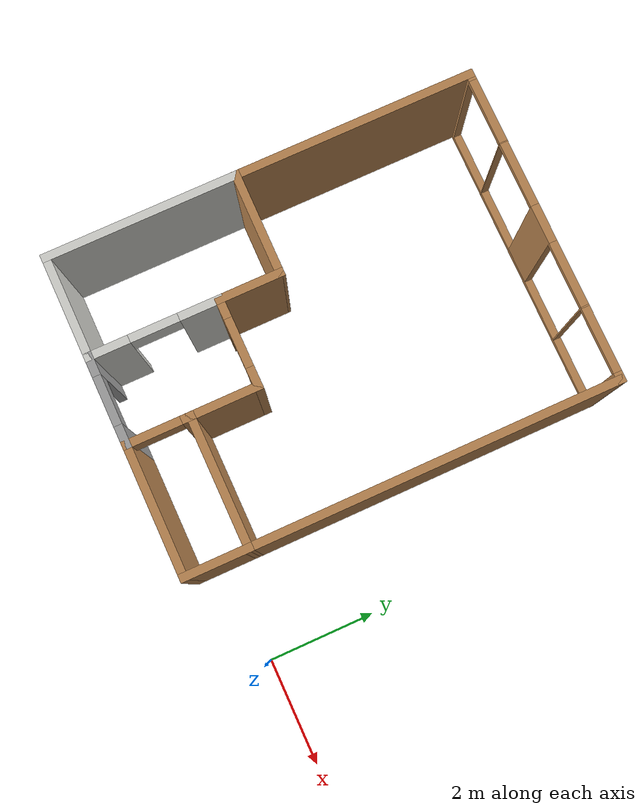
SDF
<?xml version='1.0'?>
<sdf version='1.7'>
  <model name='flat'>
    <pose>-3.86122 3.33446 0 0 -0 0</pose>
    <link name='Wall_11'>
      <pose>-1.1355 -3.90754 0 0 -0 0</pose>
      <visual name='Wall_11_Visual_0'>
        <pose>-0.661991 0 1.25 0 -0 0</pose>
        <geometry>
          <box>
            <size>0.426018 0.15 2.5</size>
          </box>
        </geometry>
        <material>
          <script>
            <uri>file://media/materials/scripts/gazebo.material</uri>
            <name>Gazebo/Grey</name>
          </script>
          <ambient>1 1 1 1</ambient>
        </material>
        <meta>
          <layer>0</layer>
        </meta>
      </visual>
      <collision name='Wall_11_Collision_0'>
        <geometry>
          <box>
            <size>0.426018 0.15 2.5</size>
          </box>
        </geometry>
        <pose>-0.661991 0 1.25 0 -0 0</pose>
      </collision>
      <visual name='Wall_11_Visual_1'>
        <pose>0.663009 0 1.25 0 -0 0</pose>
        <geometry>
          <box>
            <size>0.423982 0.15 2.5</size>
          </box>
        </geometry>
        <material>
          <script>
            <uri>file://media/materials/scripts/gazebo.material</uri>
            <name>Gazebo/Grey</name>
          </script>
          <ambient>1 1 1 1</ambient>
        </material>
        <meta>
          <layer>0</layer>
        </meta>
      </visual>
      <collision name='Wall_11_Collision_1'>
        <geometry>
          <box>
            <size>0.423982 0.15 2.5</size>
          </box>
        </geometry>
        <pose>0.663009 0 1.25 0 -0 0</pose>
      </collision>
      <visual name='Wall_11_Visual_2'>
        <pose>0.001018 0 2.25 0 -0 0</pose>
        <geometry>
          <box>
            <size>0.9 0.15 0.5</size>
          </box>
        </geometry>
        <material>
          <script>
            <uri>file://media/materials/scripts/gazebo.material</uri>
            <name>Gazebo/Grey</name>
          </script>
          <ambient>1 1 1 1</ambient>
        </material>
        <meta>
          <layer>0</layer>
        </meta>
      </visual>
      <collision name='Wall_11_Collision_2'>
        <geometry>
          <box>
            <size>0.9 0.15 0.5</size>
          </box>
        </geometry>
        <pose>0.001018 0 2.25 0 -0 0</pose>
      </collision>
    </link>
    <link name='Wall_12'>
      <pose>-0.335497 -2.73254 0 0 -0 1.5708</pose>
      <visual name='Wall_12_Visual_0'>
        <pose>-1.17571 0 1.25 0 -0 0</pose>
        <geometry>
          <box>
            <size>0.14859 0.15 2.5</size>
          </box>
        </geometry>
        <material>
          <script>
            <uri>file://media/materials/scripts/gazebo.material</uri>
            <name>Gazebo/Wood</name>
          </script>
          <ambient>1 1 1 1</ambient>
        </material>
        <meta>
          <layer>0</layer>
        </meta>
      </visual>
      <collision name='Wall_12_Collision_0'>
        <geometry>
          <box>
            <size>0.14859 0.15 2.5</size>
          </box>
        </geometry>
        <pose>-1.17571 0 1.25 0 -0 0</pose>
      </collision>
      <visual name='Wall_12_Visual_1'>
        <pose>0.524295 0 1.25 0 -0 0</pose>
        <geometry>
          <box>
            <size>1.45141 0.15 2.5</size>
          </box>
        </geometry>
        <material>
          <script>
            <uri>file://media/materials/scripts/gazebo.material</uri>
            <name>Gazebo/Wood</name>
          </script>
          <ambient>1 1 1 1</ambient>
        </material>
        <meta>
          <layer>0</layer>
        </meta>
      </visual>
      <collision name='Wall_12_Collision_1'>
        <geometry>
          <box>
            <size>1.45141 0.15 2.5</size>
          </box>
        </geometry>
        <pose>0.524295 0 1.25 0 -0 0</pose>
      </collision>
      <visual name='Wall_12_Visual_2'>
        <pose>-0.65141 0 2.25 0 -0 0</pose>
        <geometry>
          <box>
            <size>0.9 0.15 0.5</size>
          </box>
        </geometry>
        <material>
          <script>
            <uri>file://media/materials/scripts/gazebo.material</uri>
            <name>Gazebo/Wood</name>
          </script>
          <ambient>1 1 1 1</ambient>
        </material>
        <meta>
          <layer>0</layer>
        </meta>
      </visual>
      <collision name='Wall_12_Collision_2'>
        <geometry>
          <box>
            <size>0.9 0.15 0.5</size>
          </box>
        </geometry>
        <pose>-0.65141 0 2.25 0 -0 0</pose>
      </collision>
    </link>
    <link name='Wall_13'>
      <pose>-1.1355 -1.55754 0 0 -0 3.14159</pose>
      <visual name='Wall_13_Visual_0'>
        <pose>-0.663009 0 1.25 0 -0 0</pose>
        <geometry>
          <box>
            <size>0.423982 0.15 2.5</size>
          </box>
        </geometry>
        <material>
          <script>
            <uri>file://media/materials/scripts/gazebo.material</uri>
            <name>Gazebo/Wood</name>
          </script>
          <ambient>0.921569 0.807843 0.615686 1</ambient>
        </material>
        <meta>
          <layer>0</layer>
        </meta>
      </visual>
      <collision name='Wall_13_Collision_0'>
        <geometry>
          <box>
            <size>0.423982 0.15 2.5</size>
          </box>
        </geometry>
        <pose>-0.663009 0 1.25 0 -0 0</pose>
      </collision>
      <visual name='Wall_13_Visual_1'>
        <pose>0.661991 0 1.25 0 -0 0</pose>
        <geometry>
          <box>
            <size>0.426018 0.15 2.5</size>
          </box>
        </geometry>
        <material>
          <script>
            <uri>file://media/materials/scripts/gazebo.material</uri>
            <name>Gazebo/Wood</name>
          </script>
          <ambient>0.921569 0.807843 0.615686 1</ambient>
        </material>
        <meta>
          <layer>0</layer>
        </meta>
      </visual>
      <collision name='Wall_13_Collision_1'>
        <geometry>
          <box>
            <size>0.426018 0.15 2.5</size>
          </box>
        </geometry>
        <pose>0.661991 0 1.25 0 -0 0</pose>
      </collision>
      <visual name='Wall_13_Visual_2'>
        <pose>-0.001018 0 2.25 0 -0 0</pose>
        <geometry>
          <box>
            <size>0.9 0.15 0.5</size>
          </box>
        </geometry>
        <material>
          <script>
            <uri>file://media/materials/scripts/gazebo.material</uri>
            <name>Gazebo/Wood</name>
          </script>
          <ambient>0.921569 0.807843 0.615686 1</ambient>
        </material>
        <meta>
          <layer>0</layer>
        </meta>
      </visual>
      <collision name='Wall_13_Collision_2'>
        <geometry>
          <box>
            <size>0.9 0.15 0.5</size>
          </box>
        </geometry>
        <pose>-0.001018 0 2.25 0 -0 0</pose>
      </collision>
    </link>
    <link name='Wall_15'>
      <collision name='Wall_15_Collision'>
        <geometry>
          <box>
            <size>1.25 0.15 2.5</size>
          </box>
        </geometry>
        <pose>0 0 1.25 0 -0 0</pose>
      </collision>
      <visual name='Wall_15_Visual'>
        <pose>0 0 1.25 0 -0 0</pose>
        <geometry>
          <box>
            <size>1.25 0.15 2.5</size>
          </box>
        </geometry>
        <material>
          <script>
            <uri>file://media/materials/scripts/gazebo.material</uri>
            <name>Gazebo/Wood</name>
          </script>
          <ambient>1 1 1 1</ambient>
        </material>
        <meta>
          <layer>0</layer>
        </meta>
      </visual>
      <pose>-1.9355 -1.00754 0 0 -0 1.5708</pose>
    </link>
    <link name='Wall_16'>
      <collision name='Wall_16_Collision'>
        <geometry>
          <box>
            <size>2 0.15 2.5</size>
          </box>
        </geometry>
        <pose>0 0 1.25 0 -0 0</pose>
      </collision>
      <visual name='Wall_16_Visual'>
        <pose>0 0 1.25 0 -0 0</pose>
        <geometry>
          <box>
            <size>2 0.15 2.5</size>
          </box>
        </geometry>
        <material>
          <script>
            <uri>file://media/materials/scripts/gazebo.material</uri>
            <name>Gazebo/Wood</name>
          </script>
          <ambient>0.921569 0.807843 0.615686 1</ambient>
        </material>
        <meta>
          <layer>0</layer>
        </meta>
      </visual>
      <pose>-2.86064 -0.449984 0 0 -0 3.13342</pose>
    </link>
    <link name='Wall_17'>
      <collision name='Wall_17_Collision'>
        <geometry>
          <box>
            <size>3.61504 0.15 2.5</size>
          </box>
        </geometry>
        <pose>0 0 1.25 0 -0 0</pose>
      </collision>
      <visual name='Wall_17_Visual'>
        <pose>0 0 1.25 0 -0 0</pose>
        <geometry>
          <box>
            <size>3.61504 0.15 2.5</size>
          </box>
        </geometry>
        <material>
          <script>
            <uri>file://media/materials/scripts/gazebo.material</uri>
            <name>Gazebo/CeilingTiled</name>
          </script>
          <ambient>0.447059 0.623529 0.811765 1</ambient>
        </material>
        <meta>
          <layer>0</layer>
        </meta>
      </visual>
      <pose>-3.78578 -2.17494 0 0 -0 -1.5708</pose>
    </link>
    <link name='Wall_19'>
      <collision name='Wall_19_Collision'>
        <geometry>
          <box>
            <size>2.00028 0.15 2.5</size>
          </box>
        </geometry>
        <pose>0 0 1.25 0 -0 0</pose>
      </collision>
      <visual name='Wall_19_Visual'>
        <pose>0 0 1.25 0 -0 0</pose>
        <geometry>
          <box>
            <size>2.00028 0.15 2.5</size>
          </box>
        </geometry>
        <material>
          <script>
            <uri>file://media/materials/scripts/gazebo.material</uri>
            <name>Gazebo/CeilingTiled</name>
          </script>
          <ambient>0.447059 0.623529 0.811765 1</ambient>
        </material>
        <meta>
          <layer>0</layer>
        </meta>
      </visual>
      <pose>-2.86064 -3.9075 0 0 -0 -4.3e-05</pose>
    </link>
    <link name='Wall_28'>
      <collision name='Wall_28_Collision'>
        <geometry>
          <box>
            <size>2.5 0.15 2.5</size>
          </box>
        </geometry>
        <pose>0 0 1.25 0 -0 0</pose>
      </collision>
      <visual name='Wall_28_Visual'>
        <pose>0 0 1.25 0 -0 0</pose>
        <geometry>
          <box>
            <size>2.5 0.15 2.5</size>
          </box>
        </geometry>
        <material>
          <script>
            <uri>file://media/materials/scripts/gazebo.material</uri>
            <name>Gazebo/Wood</name>
          </script>
          <ambient>0.921569 0.807843 0.615686 1</ambient>
        </material>
        <meta>
          <layer>0</layer>
        </meta>
      </visual>
      <pose>0.839361 -3.9075 0 0 -0 3.4e-05</pose>
    </link>
    <link name='Wall_3'>
      <pose>-1.9355 -2.73254 0 0 -0 1.5708</pose>
      <visual name='Wall_3_Visual_0'>
        <pose>-0.849298 0 1.25 0 -0 0</pose>
        <geometry>
          <box>
            <size>0.801404 0.15 2.5</size>
          </box>
        </geometry>
        <material>
          <script>
            <uri>file://media/materials/scripts/gazebo.material</uri>
            <name>Gazebo/CeilingTiled</name>
          </script>
          <ambient>0.447059 0.623529 0.811765 1</ambient>
        </material>
        <meta>
          <layer>0</layer>
        </meta>
      </visual>
      <collision name='Wall_3_Collision_0'>
        <geometry>
          <box>
            <size>0.801404 0.15 2.5</size>
          </box>
        </geometry>
        <pose>-0.849298 0 1.25 0 -0 0</pose>
      </collision>
      <visual name='Wall_3_Visual_1'>
        <pose>0.846379 0 1.25 0 -0 0</pose>
        <geometry>
          <box>
            <size>0.807242 0.15 2.5</size>
          </box>
        </geometry>
        <material>
          <script>
            <uri>file://media/materials/scripts/gazebo.material</uri>
            <name>Gazebo/CeilingTiled</name>
          </script>
          <ambient>0.447059 0.623529 0.811765 1</ambient>
        </material>
        <meta>
          <layer>0</layer>
        </meta>
      </visual>
      <collision name='Wall_3_Collision_1'>
        <geometry>
          <box>
            <size>0.807242 0.15 2.5</size>
          </box>
        </geometry>
        <pose>0.846379 0 1.25 0 -0 0</pose>
      </collision>
      <visual name='Wall_3_Visual_2'>
        <pose>-0.002919 0 2.25 0 -0 0</pose>
        <geometry>
          <box>
            <size>0.891353 0.15 0.5</size>
          </box>
        </geometry>
        <material>
          <script>
            <uri>file://media/materials/scripts/gazebo.material</uri>
            <name>Gazebo/CeilingTiled</name>
          </script>
          <ambient>0.447059 0.623529 0.811765 1</ambient>
        </material>
        <meta>
          <layer>0</layer>
        </meta>
      </visual>
      <collision name='Wall_3_Collision_2'>
        <geometry>
          <box>
            <size>0.891353 0.15 0.5</size>
          </box>
        </geometry>
        <pose>-0.002919 0 2.25 0 -0 0</pose>
      </collision>
    </link>
    <link name='Wall_37'>
      <collision name='Wall_37_Collision'>
        <geometry>
          <box>
            <size>2.5 0.15 2.5</size>
          </box>
        </geometry>
        <pose>0 0 1.25 0 -0 0</pose>
      </collision>
      <visual name='Wall_37_Visual'>
        <pose>0 0 1.25 0 -0 0</pose>
        <geometry>
          <box>
            <size>2.5 0.15 2.5</size>
          </box>
        </geometry>
        <material>
          <script>
            <uri>file://media/materials/scripts/gazebo.material</uri>
            <name>Gazebo/Wood</name>
          </script>
          <ambient>0.921569 0.807843 0.615686 1</ambient>
        </material>
        <meta>
          <layer>0</layer>
        </meta>
      </visual>
      <pose>0.840632 -2.76766 0 0 -0 0</pose>
    </link>
    <link name='Wall_39'>
      <collision name='Wall_39_Collision'>
        <geometry>
          <box>
            <size>4.5 0.15 2.5</size>
          </box>
        </geometry>
        <pose>0 0 1.25 0 -0 0</pose>
      </collision>
      <visual name='Wall_39_Visual'>
        <pose>0 0 1.25 0 -0 0</pose>
        <geometry>
          <box>
            <size>4.5 0.15 2.5</size>
          </box>
        </geometry>
        <material>
          <script>
            <uri>file://media/materials/scripts/gazebo.material</uri>
            <name>Gazebo/Wood</name>
          </script>
          <ambient>0.921569 0.807843 0.615686 1</ambient>
        </material>
        <meta>
          <layer>0</layer>
        </meta>
      </visual>
      <pose>-3.78578 1.73256 0 0 -0 1.5708</pose>
    </link>
    <link name='Wall_40'>
      <pose>-0.885282 3.90754 0 0 -0 0</pose>
      <visual name='Wall_40_Visual_0'>
        <pose>-2.87635 0 1.25 0 -0 0</pose>
        <geometry>
          <box>
            <size>0.198292 0.15 2.5</size>
          </box>
        </geometry>
        <material>
          <script>
            <uri>file://media/materials/scripts/gazebo.material</uri>
            <name>Gazebo/Wood</name>
          </script>
          <ambient>0.921569 0.807843 0.615686 1</ambient>
        </material>
        <meta>
          <layer>0</layer>
        </meta>
      </visual>
      <collision name='Wall_40_Collision_0'>
        <geometry>
          <box>
            <size>0.198292 0.15 2.5</size>
          </box>
        </geometry>
        <pose>-2.87635 0 1.25 0 -0 0</pose>
      </collision>
      <visual name='Wall_40_Visual_1'>
        <pose>-2.16819 0 0.05 0 -0 0</pose>
        <geometry>
          <box>
            <size>1.21804 0.15 0.1</size>
          </box>
        </geometry>
        <material>
          <script>
            <uri>file://media/materials/scripts/gazebo.material</uri>
            <name>Gazebo/Wood</name>
          </script>
          <ambient>0.921569 0.807843 0.615686 1</ambient>
        </material>
        <meta>
          <layer>0</layer>
        </meta>
      </visual>
      <collision name='Wall_40_Collision_1'>
        <geometry>
          <box>
            <size>1.21804 0.15 0.1</size>
          </box>
        </geometry>
        <pose>-2.16819 0 0.05 0 -0 0</pose>
      </collision>
      <visual name='Wall_40_Visual_2'>
        <pose>0.708164 0 0.05 0 -0 0</pose>
        <geometry>
          <box>
            <size>4.53467 0.15 0.1</size>
          </box>
        </geometry>
        <material>
          <script>
            <uri>file://media/materials/scripts/gazebo.material</uri>
            <name>Gazebo/Wood</name>
          </script>
          <ambient>0.921569 0.807843 0.615686 1</ambient>
        </material>
        <meta>
          <layer>0</layer>
        </meta>
      </visual>
      <collision name='Wall_40_Collision_2'>
        <geometry>
          <box>
            <size>4.53467 0.15 0.1</size>
          </box>
        </geometry>
        <pose>0.708164 0 0.05 0 -0 0</pose>
      </collision>
      <visual name='Wall_40_Visual_3'>
        <pose>-0.008052 0 1.3 0 -0 0</pose>
        <geometry>
          <box>
            <size>0.702241 0.15 2.4</size>
          </box>
        </geometry>
        <material>
          <script>
            <uri>file://media/materials/scripts/gazebo.material</uri>
            <name>Gazebo/Wood</name>
          </script>
          <ambient>0.921569 0.807843 0.615686 1</ambient>
        </material>
        <meta>
          <layer>0</layer>
        </meta>
      </visual>
      <collision name='Wall_40_Collision_3'>
        <geometry>
          <box>
            <size>0.702241 0.15 2.4</size>
          </box>
        </geometry>
        <pose>-0.008052 0 1.3 0 -0 0</pose>
      </collision>
      <visual name='Wall_40_Visual_4'>
        <pose>1.55585 0 1.3 0 -0 0</pose>
        <geometry>
          <box>
            <size>0.025555 0.15 2.4</size>
          </box>
        </geometry>
        <material>
          <script>
            <uri>file://media/materials/scripts/gazebo.material</uri>
            <name>Gazebo/Wood</name>
          </script>
          <ambient>0.921569 0.807843 0.615686 1</ambient>
        </material>
        <meta>
          <layer>0</layer>
        </meta>
      </visual>
      <collision name='Wall_40_Collision_4'>
        <geometry>
          <box>
            <size>0.025555 0.15 2.4</size>
          </box>
        </geometry>
        <pose>1.55585 0 1.3 0 -0 0</pose>
      </collision>
      <visual name='Wall_40_Visual_5'>
        <pose>2.87206 0 1.3 0 -0 0</pose>
        <geometry>
          <box>
            <size>0.206876 0.15 2.4</size>
          </box>
        </geometry>
        <material>
          <script>
            <uri>file://media/materials/scripts/gazebo.material</uri>
            <name>Gazebo/Wood</name>
          </script>
          <ambient>0.921569 0.807843 0.615686 1</ambient>
        </material>
        <meta>
          <layer>0</layer>
        </meta>
      </visual>
      <collision name='Wall_40_Collision_5'>
        <geometry>
          <box>
            <size>0.206876 0.15 2.4</size>
          </box>
        </geometry>
        <pose>2.87206 0 1.3 0 -0 0</pose>
      </collision>
      <visual name='Wall_40_Visual_6'>
        <pose>-1.56819 0 1.3 0 -0 0</pose>
        <geometry>
          <box>
            <size>0.018036 0.15 2.4</size>
          </box>
        </geometry>
        <material>
          <script>
            <uri>file://media/materials/scripts/gazebo.material</uri>
            <name>Gazebo/Wood</name>
          </script>
          <ambient>0.921569 0.807843 0.615686 1</ambient>
        </material>
        <meta>
          <layer>0</layer>
        </meta>
      </visual>
      <collision name='Wall_40_Collision_6'>
        <geometry>
          <box>
            <size>0.018036 0.15 2.4</size>
          </box>
        </geometry>
        <pose>-1.56819 0 1.3 0 -0 0</pose>
      </collision>
      <visual name='Wall_40_Visual_7'>
        <pose>-1.56819 0 1.3 0 -0 0</pose>
        <geometry>
          <box>
            <size>0.018036 0.15 2.4</size>
          </box>
        </geometry>
        <material>
          <script>
            <uri>file://media/materials/scripts/gazebo.material</uri>
            <name>Gazebo/Wood</name>
          </script>
          <ambient>0.921569 0.807843 0.615686 1</ambient>
        </material>
        <meta>
          <layer>0</layer>
        </meta>
      </visual>
      <collision name='Wall_40_Collision_7'>
        <geometry>
          <box>
            <size>0.018036 0.15 2.4</size>
          </box>
        </geometry>
        <pose>-1.56819 0 1.3 0 -0 0</pose>
      </collision>
      <visual name='Wall_40_Visual_8'>
        <pose>0.943069 0 2.45 0 -0 0</pose>
        <geometry>
          <box>
            <size>1.2 0.15 0.1</size>
          </box>
        </geometry>
        <material>
          <script>
            <uri>file://media/materials/scripts/gazebo.material</uri>
            <name>Gazebo/Wood</name>
          </script>
          <ambient>0.921569 0.807843 0.615686 1</ambient>
        </material>
        <meta>
          <layer>0</layer>
        </meta>
      </visual>
      <collision name='Wall_40_Collision_8'>
        <geometry>
          <box>
            <size>1.2 0.15 0.1</size>
          </box>
        </geometry>
        <pose>0.943069 0 2.45 0 -0 0</pose>
      </collision>
      <visual name='Wall_40_Visual_9'>
        <pose>2.16862 0 2.45 0 -0 0</pose>
        <geometry>
          <box>
            <size>1.2 0.15 0.1</size>
          </box>
        </geometry>
        <material>
          <script>
            <uri>file://media/materials/scripts/gazebo.material</uri>
            <name>Gazebo/Wood</name>
          </script>
          <ambient>0.921569 0.807843 0.615686 1</ambient>
        </material>
        <meta>
          <layer>0</layer>
        </meta>
      </visual>
      <collision name='Wall_40_Collision_9'>
        <geometry>
          <box>
            <size>1.2 0.15 0.1</size>
          </box>
        </geometry>
        <pose>2.16862 0 2.45 0 -0 0</pose>
      </collision>
      <visual name='Wall_40_Visual_10'>
        <pose>-0.959172 0 2.45 0 -0 0</pose>
        <geometry>
          <box>
            <size>1.2 0.15 0.1</size>
          </box>
        </geometry>
        <material>
          <script>
            <uri>file://media/materials/scripts/gazebo.material</uri>
            <name>Gazebo/Wood</name>
          </script>
          <ambient>0.921569 0.807843 0.615686 1</ambient>
        </material>
        <meta>
          <layer>0</layer>
        </meta>
      </visual>
      <collision name='Wall_40_Collision_10'>
        <geometry>
          <box>
            <size>1.2 0.15 0.1</size>
          </box>
        </geometry>
        <pose>-0.959172 0 2.45 0 -0 0</pose>
      </collision>
      <visual name='Wall_40_Visual_11'>
        <pose>-0.959172 0 2.45 0 -0 0</pose>
        <geometry>
          <box>
            <size>1.2 0.15 0.1</size>
          </box>
        </geometry>
        <material>
          <script>
            <uri>file://media/materials/scripts/gazebo.material</uri>
            <name>Gazebo/Wood</name>
          </script>
          <ambient>0.921569 0.807843 0.615686 1</ambient>
        </material>
        <meta>
          <layer>0</layer>
        </meta>
      </visual>
      <collision name='Wall_40_Collision_11'>
        <geometry>
          <box>
            <size>1.2 0.15 0.1</size>
          </box>
        </geometry>
        <pose>-0.959172 0 2.45 0 -0 0</pose>
      </collision>
      <visual name='Wall_40_Visual_12'>
        <pose>-2.17721 0 2.45 0 -0 0</pose>
        <geometry>
          <box>
            <size>1.2 0.15 0.1</size>
          </box>
        </geometry>
        <material>
          <script>
            <uri>file://media/materials/scripts/gazebo.material</uri>
            <name>Gazebo/Wood</name>
          </script>
          <ambient>0.921569 0.807843 0.615686 1</ambient>
        </material>
        <meta>
          <layer>0</layer>
        </meta>
      </visual>
      <collision name='Wall_40_Collision_12'>
        <geometry>
          <box>
            <size>1.2 0.15 0.1</size>
          </box>
        </geometry>
        <pose>-2.17721 0 2.45 0 -0 0</pose>
      </collision>
    </link>
    <link name='Wall_42'>
      <collision name='Wall_42_Collision'>
        <geometry>
          <box>
            <size>6.8252 0.15 2.5</size>
          </box>
        </geometry>
        <pose>0 0 1.25 0 -0 0</pose>
      </collision>
      <visual name='Wall_42_Visual'>
        <pose>0 0 1.25 0 -0 0</pose>
        <geometry>
          <box>
            <size>6.8252 0.15 2.5</size>
          </box>
        </geometry>
        <material>
          <script>
            <uri>file://media/materials/scripts/gazebo.material</uri>
            <name>Gazebo/Wood</name>
          </script>
          <ambient>0.921569 0.807843 0.615686 1</ambient>
        </material>
        <meta>
          <layer>0</layer>
        </meta>
      </visual>
      <pose>2.01543 0.569938 0 0 -0 1.57086</pose>
    </link>
    <link name='Wall_44'>
      <collision name='Wall_44_Collision'>
        <geometry>
          <box>
            <size>1.2898 0.15 2.5</size>
          </box>
        </geometry>
        <pose>0 0 1.25 0 -0 0</pose>
      </collision>
      <visual name='Wall_44_Visual'>
        <pose>0 0 1.25 0 -0 0</pose>
        <geometry>
          <box>
            <size>1.2898 0.15 2.5</size>
          </box>
        </geometry>
        <material>
          <script>
            <uri>file://media/materials/scripts/gazebo.material</uri>
            <name>Gazebo/Wood</name>
          </script>
          <ambient>1 1 1 1</ambient>
        </material>
        <meta>
          <layer>0</layer>
        </meta>
      </visual>
      <pose>2.01492 -3.33756 0 0 -0 1.56956</pose>
    </link>
    <static>1</static>
  </model>
</sdf>
